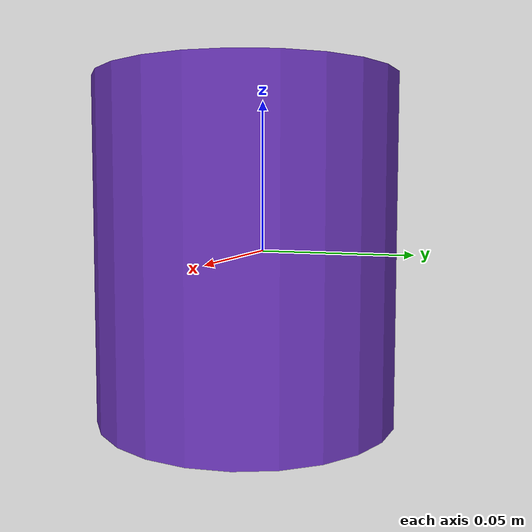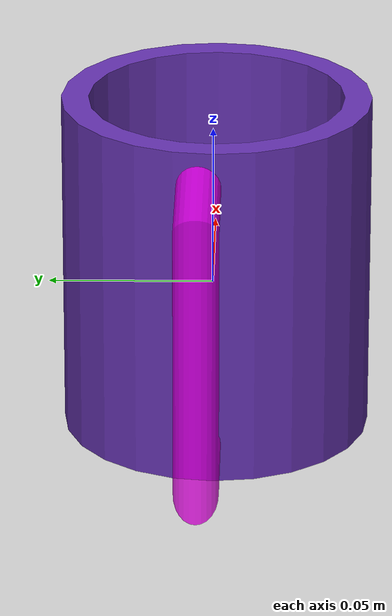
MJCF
<?xml version="1.0" encoding="utf-8"?>
<mujoco model="top_watertight_tiny">

  <asset>

    <mesh file="top_watertight_tiny.obj"/>

    <mesh file="top_watertight_tiny_collision_0.obj"/>

    <mesh file="top_watertight_tiny_collision_1.obj"/>

    <mesh file="top_watertight_tiny_collision_2.obj"/>

    <mesh file="top_watertight_tiny_collision_3.obj"/>

    <mesh file="top_watertight_tiny_collision_4.obj"/>

    <mesh file="top_watertight_tiny_collision_5.obj"/>

    <mesh file="top_watertight_tiny_collision_6.obj"/>

    <mesh file="top_watertight_tiny_collision_7.obj"/>

    <mesh file="top_watertight_tiny_collision_8.obj"/>

    <mesh file="top_watertight_tiny_collision_9.obj"/>

    <mesh file="top_watertight_tiny_collision_10.obj"/>

    <mesh file="top_watertight_tiny_collision_11.obj"/>

    <mesh file="top_watertight_tiny_collision_12.obj"/>

    <mesh file="top_watertight_tiny_collision_13.obj"/>

    <mesh file="top_watertight_tiny_collision_14.obj"/>

    <mesh file="top_watertight_tiny_collision_15.obj"/>

    <mesh file="top_watertight_tiny_collision_16.obj"/>

    <mesh file="top_watertight_tiny_collision_17.obj"/>

    <mesh file="top_watertight_tiny_collision_18.obj"/>

    <mesh file="top_watertight_tiny_collision_19.obj"/>

    <mesh file="top_watertight_tiny_collision_20.obj"/>

    <mesh file="top_watertight_tiny_collision_21.obj"/>

    <mesh file="top_watertight_tiny_collision_22.obj"/>

    <mesh file="top_watertight_tiny_collision_23.obj"/>

    <mesh file="top_watertight_tiny_collision_24.obj"/>

    <mesh file="bottom_watertight_tiny.obj"/>

    <mesh file="bottom_watertight_tiny_collision_0.obj"/>

    <mesh file="bottom_watertight_tiny_collision_1.obj"/>

    <mesh file="bottom_watertight_tiny_collision_2.obj"/>

    <mesh file="bottom_watertight_tiny_collision_3.obj"/>

    <mesh file="bottom_watertight_tiny_collision_4.obj"/>

    <mesh file="bottom_watertight_tiny_collision_5.obj"/>

    <mesh file="bottom_watertight_tiny_collision_6.obj"/>

    <mesh file="bottom_watertight_tiny_collision_7.obj"/>

    <mesh file="bottom_watertight_tiny_collision_8.obj"/>

    <mesh file="bottom_watertight_tiny_collision_9.obj"/>

    <mesh file="bottom_watertight_tiny_collision_10.obj"/>

    <mesh file="bottom_watertight_tiny_collision_11.obj"/>

    <mesh file="bottom_watertight_tiny_collision_12.obj"/>

    <mesh file="bottom_watertight_tiny_collision_13.obj"/>

    <mesh file="bottom_watertight_tiny_collision_14.obj"/>

    <mesh file="bottom_watertight_tiny_collision_15.obj"/>

    <mesh file="bottom_watertight_tiny_collision_16.obj"/>

    <mesh file="bottom_watertight_tiny_collision_17.obj"/>

    <mesh file="bottom_watertight_tiny_collision_18.obj"/>

    <mesh file="bottom_watertight_tiny_collision_19.obj"/>

    <mesh file="bottom_watertight_tiny_collision_20.obj"/>

    <mesh file="bottom_watertight_tiny_collision_21.obj"/>

    <mesh file="bottom_watertight_tiny_collision_22.obj"/>

    <mesh file="bottom_watertight_tiny_collision_23.obj"/>

    <mesh file="bottom_watertight_tiny_collision_24.obj"/>

    <mesh file="bottom_watertight_tiny_collision_25.obj"/>

    <mesh file="bottom_watertight_tiny_collision_26.obj"/>

    <mesh file="bottom_watertight_tiny_collision_27.obj"/>

    <mesh file="bottom_watertight_tiny_collision_28.obj"/>

    <mesh file="bottom_watertight_tiny_collision_29.obj"/>

    <mesh file="bottom_watertight_tiny_collision_30.obj"/>

    <mesh file="bottom_watertight_tiny_collision_31.obj"/>

    <mesh file="bottom_watertight_tiny_collision_32.obj"/>

    <mesh file="bottom_watertight_tiny_collision_33.obj"/>

  </asset>

  <worldbody>

    <body name="top_watertight_tiny">

      <freejoint/>

      <geom mesh="top_watertight_tiny" group="2" type="mesh" rgba="0.4 0.2 0.7 1" contype="0" conaffinity="0" solimp="0.90 0.95 0.001" solref="0.02 1.0" density="100" friction="0.95 0.4 0.3"/>

      <geom mesh="top_watertight_tiny_collision_0" rgba="0.8224263125816443 0.9517639492198736 0.5453538352742968 1" group="3" type="mesh" solimp="0.90 0.95 0.001" solref="0.02 1.0" density="100" friction="0.95 0.4 0.3"/>

      <geom mesh="top_watertight_tiny_collision_1" rgba="0.7494781317256952 0.7592277166603743 0.37468605314924497 1" group="3" type="mesh" solimp="0.90 0.95 0.001" solref="0.02 1.0" density="100" friction="0.95 0.4 0.3"/>

      <geom mesh="top_watertight_tiny_collision_2" rgba="0.9387583375955585 0.26762709914260596 0.21134507920314738 1" group="3" type="mesh" solimp="0.90 0.95 0.001" solref="0.02 1.0" density="100" friction="0.95 0.4 0.3"/>

      <geom mesh="top_watertight_tiny_collision_3" rgba="0.4357200522811545 0.4092829010428962 0.2921918026887561 1" group="3" type="mesh" solimp="0.90 0.95 0.001" solref="0.02 1.0" density="100" friction="0.95 0.4 0.3"/>

      <geom mesh="top_watertight_tiny_collision_4" rgba="0.4833379353040814 0.4602743971612051 0.7596064443123128 1" group="3" type="mesh" solimp="0.90 0.95 0.001" solref="0.02 1.0" density="100" friction="0.95 0.4 0.3"/>

      <geom mesh="top_watertight_tiny_collision_5" rgba="0.5556578873843675 0.5084667005531425 0.5650352314338049 1" group="3" type="mesh" solimp="0.90 0.95 0.001" solref="0.02 1.0" density="100" friction="0.95 0.4 0.3"/>

      <geom mesh="top_watertight_tiny_collision_6" rgba="0.3422548131658415 0.6767123980549883 0.06919372380824529 1" group="3" type="mesh" solimp="0.90 0.95 0.001" solref="0.02 1.0" density="100" friction="0.95 0.4 0.3"/>

      <geom mesh="top_watertight_tiny_collision_7" rgba="0.6005874045435983 0.4834681999408945 0.24401875419311647 1" group="3" type="mesh" solimp="0.90 0.95 0.001" solref="0.02 1.0" density="100" friction="0.95 0.4 0.3"/>

      <geom mesh="top_watertight_tiny_collision_8" rgba="0.10738541336583762 0.7035260289150987 0.6790710028565264 1" group="3" type="mesh" solimp="0.90 0.95 0.001" solref="0.02 1.0" density="100" friction="0.95 0.4 0.3"/>

      <geom mesh="top_watertight_tiny_collision_9" rgba="0.9967229298358151 0.6934513254418134 0.7212225286566796 1" group="3" type="mesh" solimp="0.90 0.95 0.001" solref="0.02 1.0" density="100" friction="0.95 0.4 0.3"/>

      <geom mesh="top_watertight_tiny_collision_10" rgba="0.12382906496768165 0.12732364197019663 0.8027368992584083 1" group="3" type="mesh" solimp="0.90 0.95 0.001" solref="0.02 1.0" density="100" friction="0.95 0.4 0.3"/>

      <geom mesh="top_watertight_tiny_collision_11" rgba="0.38770535955129526 0.4431748083123819 0.34118047975489907 1" group="3" type="mesh" solimp="0.90 0.95 0.001" solref="0.02 1.0" density="100" friction="0.95 0.4 0.3"/>

      <geom mesh="top_watertight_tiny_collision_12" rgba="0.29289179029668455 0.9177775218882368 0.4106549371463024 1" group="3" type="mesh" solimp="0.90 0.95 0.001" solref="0.02 1.0" density="100" friction="0.95 0.4 0.3"/>

      <geom mesh="top_watertight_tiny_collision_13" rgba="0.13665261952698227 0.7325897658644172 0.8082358982958415 1" group="3" type="mesh" solimp="0.90 0.95 0.001" solref="0.02 1.0" density="100" friction="0.95 0.4 0.3"/>

      <geom mesh="top_watertight_tiny_collision_14" rgba="0.6916383520075973 0.5014788981346958 0.015807813511008018 1" group="3" type="mesh" solimp="0.90 0.95 0.001" solref="0.02 1.0" density="100" friction="0.95 0.4 0.3"/>

      <geom mesh="top_watertight_tiny_collision_15" rgba="0.904202774832396 0.9405345521617112 0.2763893759062106 1" group="3" type="mesh" solimp="0.90 0.95 0.001" solref="0.02 1.0" density="100" friction="0.95 0.4 0.3"/>

      <geom mesh="top_watertight_tiny_collision_16" rgba="0.24665750855267976 0.049001693198439056 0.5401057863560614 1" group="3" type="mesh" solimp="0.90 0.95 0.001" solref="0.02 1.0" density="100" friction="0.95 0.4 0.3"/>

      <geom mesh="top_watertight_tiny_collision_17" rgba="0.002584612124159613 0.9003884845467695 0.8140831374629992 1" group="3" type="mesh" solimp="0.90 0.95 0.001" solref="0.02 1.0" density="100" friction="0.95 0.4 0.3"/>

      <geom mesh="top_watertight_tiny_collision_18" rgba="0.23088961557021714 0.8935479171160995 0.23325444749021296 1" group="3" type="mesh" solimp="0.90 0.95 0.001" solref="0.02 1.0" density="100" friction="0.95 0.4 0.3"/>

      <geom mesh="top_watertight_tiny_collision_19" rgba="0.044018688714457244 0.23158070447834211 0.5426480030687494 1" group="3" type="mesh" solimp="0.90 0.95 0.001" solref="0.02 1.0" density="100" friction="0.95 0.4 0.3"/>

      <geom mesh="top_watertight_tiny_collision_20" rgba="0.011216981076395682 0.3583801870914741 0.10053204573322683 1" group="3" type="mesh" solimp="0.90 0.95 0.001" solref="0.02 1.0" density="100" friction="0.95 0.4 0.3"/>

      <geom mesh="top_watertight_tiny_collision_21" rgba="0.6439434104092729 0.257531213901546 0.34481617108674467 1" group="3" type="mesh" solimp="0.90 0.95 0.001" solref="0.02 1.0" density="100" friction="0.95 0.4 0.3"/>

      <geom mesh="top_watertight_tiny_collision_22" rgba="0.23565192502108956 0.26700659401372695 0.3512944255627214 1" group="3" type="mesh" solimp="0.90 0.95 0.001" solref="0.02 1.0" density="100" friction="0.95 0.4 0.3"/>

      <geom mesh="top_watertight_tiny_collision_23" rgba="0.8982067567604414 0.43983533385297424 0.49225682516026037 1" group="3" type="mesh" solimp="0.90 0.95 0.001" solref="0.02 1.0" density="100" friction="0.95 0.4 0.3"/>

      <geom mesh="top_watertight_tiny_collision_24" rgba="0.13143315776205167 0.7018019747998216 0.018769357110711704 1" group="3" type="mesh" solimp="0.90 0.95 0.001" solref="0.02 1.0" density="100" friction="0.95 0.4 0.3"/>

      <body name="bottom_watertight_tiny">

        <geom mesh="bottom_watertight_tiny" group="2" type="mesh" rgba="1 0 1 0.8" contype="0" conaffinity="0" solimp="0.90 0.95 0.001" solref="0.02 1.0" density="100" friction="0.95 0.4 0.3"/>

        <geom mesh="bottom_watertight_tiny_collision_0" rgba="0.5863560367145646 0.8555536879842435 0.0633954366468028 1" group="3" type="mesh" solimp="0.90 0.95 0.001" solref="0.02 1.0" density="100" friction="0.95 0.4 0.3"/>

        <geom mesh="bottom_watertight_tiny_collision_1" rgba="0.455347986868442 0.8044326765668621 0.3466124854345708 1" group="3" type="mesh" solimp="0.90 0.95 0.001" solref="0.02 1.0" density="100" friction="0.95 0.4 0.3"/>

        <geom mesh="bottom_watertight_tiny_collision_2" rgba="0.5376563477223059 0.36525385916417863 0.5596753494512697 1" group="3" type="mesh" solimp="0.90 0.95 0.001" solref="0.02 1.0" density="100" friction="0.95 0.4 0.3"/>

        <geom mesh="bottom_watertight_tiny_collision_3" rgba="0.3504727070987115 0.08388809239735318 0.7275028530447429 1" group="3" type="mesh" solimp="0.90 0.95 0.001" solref="0.02 1.0" density="100" friction="0.95 0.4 0.3"/>

        <geom mesh="bottom_watertight_tiny_collision_4" rgba="0.37608744001197913 0.8262495281111194 0.3320383407650779 1" group="3" type="mesh" solimp="0.90 0.95 0.001" solref="0.02 1.0" density="100" friction="0.95 0.4 0.3"/>

        <geom mesh="bottom_watertight_tiny_collision_5" rgba="0.10676097897684689 0.5669565415721267 0.5153892940768947 1" group="3" type="mesh" solimp="0.90 0.95 0.001" solref="0.02 1.0" density="100" friction="0.95 0.4 0.3"/>

        <geom mesh="bottom_watertight_tiny_collision_6" rgba="0.8406582189760492 0.6750009217400927 0.7512848054713015 1" group="3" type="mesh" solimp="0.90 0.95 0.001" solref="0.02 1.0" density="100" friction="0.95 0.4 0.3"/>

        <geom mesh="bottom_watertight_tiny_collision_7" rgba="0.06739891120266384 0.4391459106852985 0.5582511180487594 1" group="3" type="mesh" solimp="0.90 0.95 0.001" solref="0.02 1.0" density="100" friction="0.95 0.4 0.3"/>

        <geom mesh="bottom_watertight_tiny_collision_8" rgba="0.20634242102198863 0.8357574666129035 0.9088965000012885 1" group="3" type="mesh" solimp="0.90 0.95 0.001" solref="0.02 1.0" density="100" friction="0.95 0.4 0.3"/>

        <geom mesh="bottom_watertight_tiny_collision_9" rgba="0.7095692922381079 0.4598176347320331 0.7924689191080077 1" group="3" type="mesh" solimp="0.90 0.95 0.001" solref="0.02 1.0" density="100" friction="0.95 0.4 0.3"/>

        <geom mesh="bottom_watertight_tiny_collision_10" rgba="0.9528296473994605 0.5064110598526791 0.9472035812743419 1" group="3" type="mesh" solimp="0.90 0.95 0.001" solref="0.02 1.0" density="100" friction="0.95 0.4 0.3"/>

        <geom mesh="bottom_watertight_tiny_collision_11" rgba="0.36419687132308687 0.6435875719572597 0.786774596124691 1" group="3" type="mesh" solimp="0.90 0.95 0.001" solref="0.02 1.0" density="100" friction="0.95 0.4 0.3"/>

        <geom mesh="bottom_watertight_tiny_collision_12" rgba="0.022776076804194245 0.3020378534144116 0.1168102339910071 1" group="3" type="mesh" solimp="0.90 0.95 0.001" solref="0.02 1.0" density="100" friction="0.95 0.4 0.3"/>

        <geom mesh="bottom_watertight_tiny_collision_13" rgba="0.6114590175156601 0.19063878546487267 0.7558044958670235 1" group="3" type="mesh" solimp="0.90 0.95 0.001" solref="0.02 1.0" density="100" friction="0.95 0.4 0.3"/>

        <geom mesh="bottom_watertight_tiny_collision_14" rgba="0.7884006569492666 0.7953628342990464 0.6081861787546002 1" group="3" type="mesh" solimp="0.90 0.95 0.001" solref="0.02 1.0" density="100" friction="0.95 0.4 0.3"/>

        <geom mesh="bottom_watertight_tiny_collision_15" rgba="0.778904864715041 0.3026949634207824 0.5277690749075248 1" group="3" type="mesh" solimp="0.90 0.95 0.001" solref="0.02 1.0" density="100" friction="0.95 0.4 0.3"/>

        <geom mesh="bottom_watertight_tiny_collision_16" rgba="0.1997482395170307 0.23385928806768097 0.3973905547855572 1" group="3" type="mesh" solimp="0.90 0.95 0.001" solref="0.02 1.0" density="100" friction="0.95 0.4 0.3"/>

        <geom mesh="bottom_watertight_tiny_collision_17" rgba="0.3923665520494338 0.1348730084431834 0.41846743781524043 1" group="3" type="mesh" solimp="0.90 0.95 0.001" solref="0.02 1.0" density="100" friction="0.95 0.4 0.3"/>

        <geom mesh="bottom_watertight_tiny_collision_18" rgba="0.32805800067173485 0.009468014727878504 0.34329005406963753 1" group="3" type="mesh" solimp="0.90 0.95 0.001" solref="0.02 1.0" density="100" friction="0.95 0.4 0.3"/>

        <geom mesh="bottom_watertight_tiny_collision_19" rgba="0.2956618426032487 0.4405158707828565 0.9054665943503664 1" group="3" type="mesh" solimp="0.90 0.95 0.001" solref="0.02 1.0" density="100" friction="0.95 0.4 0.3"/>

        <geom mesh="bottom_watertight_tiny_collision_20" rgba="0.9027110977898971 0.3041602586303094 0.21374325172946473 1" group="3" type="mesh" solimp="0.90 0.95 0.001" solref="0.02 1.0" density="100" friction="0.95 0.4 0.3"/>

        <geom mesh="bottom_watertight_tiny_collision_21" rgba="0.9969605335344252 0.6847246010374549 0.44140894911486994 1" group="3" type="mesh" solimp="0.90 0.95 0.001" solref="0.02 1.0" density="100" friction="0.95 0.4 0.3"/>

        <geom mesh="bottom_watertight_tiny_collision_22" rgba="0.6088085247100444 0.45326718023703616 0.007687958274915974 1" group="3" type="mesh" solimp="0.90 0.95 0.001" solref="0.02 1.0" density="100" friction="0.95 0.4 0.3"/>

        <geom mesh="bottom_watertight_tiny_collision_23" rgba="0.3609347517823972 0.4004171310172836 0.29946179599342604 1" group="3" type="mesh" solimp="0.90 0.95 0.001" solref="0.02 1.0" density="100" friction="0.95 0.4 0.3"/>

        <geom mesh="bottom_watertight_tiny_collision_24" rgba="0.08597299595604835 0.31795016954999034 0.31170903025617624 1" group="3" type="mesh" solimp="0.90 0.95 0.001" solref="0.02 1.0" density="100" friction="0.95 0.4 0.3"/>

        <geom mesh="bottom_watertight_tiny_collision_25" rgba="0.29473316063361354 0.015857478178115003 0.044725677993798674 1" group="3" type="mesh" solimp="0.90 0.95 0.001" solref="0.02 1.0" density="100" friction="0.95 0.4 0.3"/>

        <geom mesh="bottom_watertight_tiny_collision_26" rgba="0.8029944455872108 0.9667979937828599 0.1161024574389431 1" group="3" type="mesh" solimp="0.90 0.95 0.001" solref="0.02 1.0" density="100" friction="0.95 0.4 0.3"/>

        <geom mesh="bottom_watertight_tiny_collision_27" rgba="0.3294229958398235 0.17010584289740704 0.10195752194440333 1" group="3" type="mesh" solimp="0.90 0.95 0.001" solref="0.02 1.0" density="100" friction="0.95 0.4 0.3"/>

        <geom mesh="bottom_watertight_tiny_collision_28" rgba="0.14913741377424072 0.21801655449429347 0.7705254648062375 1" group="3" type="mesh" solimp="0.90 0.95 0.001" solref="0.02 1.0" density="100" friction="0.95 0.4 0.3"/>

        <geom mesh="bottom_watertight_tiny_collision_29" rgba="0.9432535556268609 0.18633267519952346 0.6217897917495518 1" group="3" type="mesh" solimp="0.90 0.95 0.001" solref="0.02 1.0" density="100" friction="0.95 0.4 0.3"/>

        <geom mesh="bottom_watertight_tiny_collision_30" rgba="0.8792942472078066 0.9019599188467247 0.7971197874128807 1" group="3" type="mesh" solimp="0.90 0.95 0.001" solref="0.02 1.0" density="100" friction="0.95 0.4 0.3"/>

        <geom mesh="bottom_watertight_tiny_collision_31" rgba="0.297378214774762 0.8978911290727053 0.5237999494350041 1" group="3" type="mesh" solimp="0.90 0.95 0.001" solref="0.02 1.0" density="100" friction="0.95 0.4 0.3"/>

        <geom mesh="bottom_watertight_tiny_collision_32" rgba="0.5951593615070208 0.29008336953588265 0.07846296332360869 1" group="3" type="mesh" solimp="0.90 0.95 0.001" solref="0.02 1.0" density="100" friction="0.95 0.4 0.3"/>

        <geom mesh="bottom_watertight_tiny_collision_33" rgba="0.5860094018442469 0.3498131030902497 0.7710977349498933 1" group="3" type="mesh" solimp="0.90 0.95 0.001" solref="0.02 1.0" density="100" friction="0.95 0.4 0.3"/>

        <site name="bottom_watertight_tiny_touch_site" pos="0 0 0" size="0.2" rgba="1 0 0 0." type="sphere"/>
      </body>

      <site name="top_watertight_tiny_touch_site" pos="0 0 0" size="0.2" rgba="1 0 0 0." type="sphere"/>
    </body>

  </worldbody>

  <sensor>
    <touch name="top_watertight_tiny_touch" site="top_watertight_tiny_touch_site"/>
    <touch name="bottom_watertight_tiny_touch" site="bottom_watertight_tiny_touch_site"/>
  </sensor>
</mujoco>
